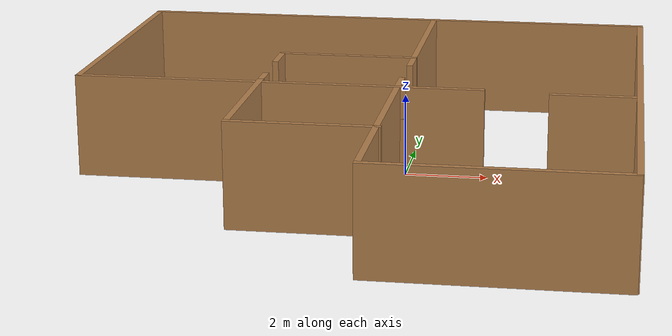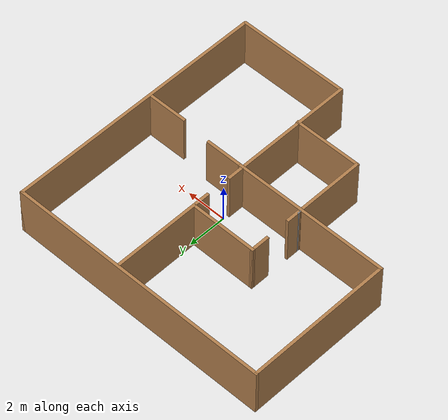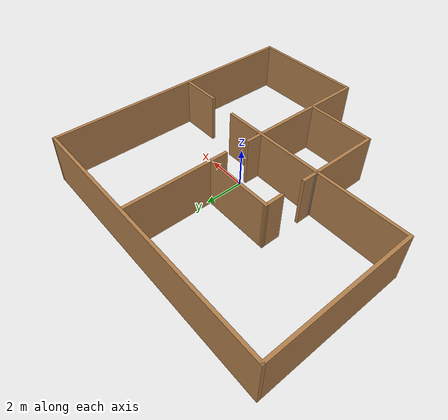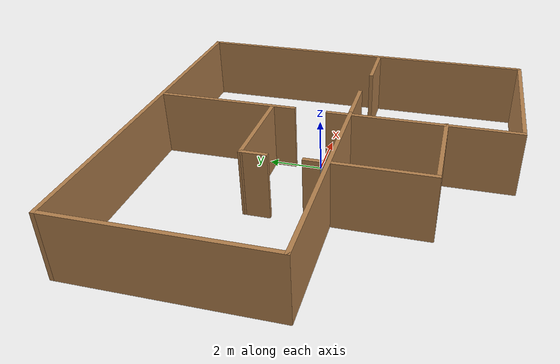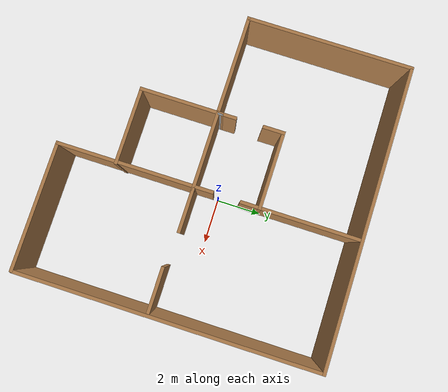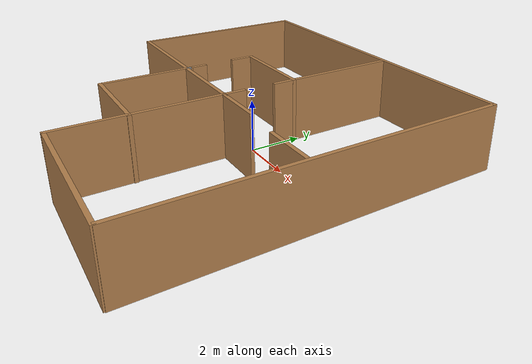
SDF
<?xml version='1.0'?>
<sdf version='1.6'>
  <model name='Robot_House'>
    <pose frame=''>-1.104 -0.45 0 0 -0 0</pose>
    <link name='Wall_0'>
      <collision name='Wall_0_Collision'>
        <geometry>
          <box>
            <size>13.5 0.15 2.5</size>
          </box>
        </geometry>
        <pose frame=''>0 0 1.25 0 -0 0</pose>
      </collision>
      <visual name='Wall_0_Visual'>
        <pose frame=''>0 0 1.25 0 -0 0</pose>
        <geometry>
          <box>
            <size>13.5 0.15 2.5</size>
          </box>
        </geometry>
        <material>
          <script>
            <uri>file://media/materials/scripts/gazebo.material</uri>
            <name>Gazebo/Wood</name>
          </script>
          <ambient>1 1 1 1</ambient>
        </material>
        <meta>
          <layer>0</layer>
        </meta>
      </visual>
      <pose frame=''>-0 6.703 0 0 -0 0</pose>
    </link>
    <link name='Wall_1'>
      <collision name='Wall_1_Collision'>
        <geometry>
          <box>
            <size>13.5 0.15 2.5</size>
          </box>
        </geometry>
        <pose frame=''>0 0 1.25 0 -0 0</pose>
      </collision>
      <visual name='Wall_1_Visual'>
        <pose frame=''>0 0 1.25 0 -0 0</pose>
        <geometry>
          <box>
            <size>13.5 0.15 2.5</size>
          </box>
        </geometry>
        <material>
          <script>
            <uri>file://media/materials/scripts/gazebo.material</uri>
            <name>Gazebo/Wood</name>
          </script>
          <ambient>1 1 1 1</ambient>
        </material>
        <meta>
          <layer>0</layer>
        </meta>
      </visual>
      <pose frame=''>6.675 0.028 0 0 -0 -1.5708</pose>
    </link>
    <link name='Wall_10'>
      <collision name='Wall_10_Collision'>
        <geometry>
          <box>
            <size>8 0.15 2.5</size>
          </box>
        </geometry>
        <pose frame=''>0 0 1.25 0 -0 0</pose>
      </collision>
      <visual name='Wall_10_Visual'>
        <pose frame=''>0 0 1.25 0 -0 0</pose>
        <geometry>
          <box>
            <size>8 0.15 2.5</size>
          </box>
        </geometry>
        <material>
          <script>
            <uri>file://media/materials/scripts/gazebo.material</uri>
            <name>Gazebo/Wood</name>
          </script>
          <ambient>1 1 1 1</ambient>
        </material>
        <meta>
          <layer>0</layer>
        </meta>
      </visual>
      <pose frame=''>-2.75 -0.647 0 0 -0 0</pose>
    </link>
    <link name='Wall_12'>
      <collision name='Wall_12_Collision'>
        <geometry>
          <box>
            <size>0.75 0.15 2.5</size>
          </box>
        </geometry>
        <pose frame=''>0 0 1.25 0 -0 0</pose>
      </collision>
      <visual name='Wall_12_Visual'>
        <pose frame=''>0 0 1.25 0 -0 0</pose>
        <geometry>
          <box>
            <size>0.75 0.15 2.5</size>
          </box>
        </geometry>
        <material>
          <script>
            <uri>file://media/materials/scripts/gazebo.material</uri>
            <name>Gazebo/Wood</name>
          </script>
          <ambient>1 1 1 1</ambient>
        </material>
        <meta>
          <layer>0</layer>
        </meta>
      </visual>
      <pose frame=''>-2.263 -0.178 0 0 -0 -1.5708</pose>
    </link>
    <link name='Wall_14'>
      <collision name='Wall_14_Collision'>
        <geometry>
          <box>
            <size>0.25 0.15 2.5</size>
          </box>
        </geometry>
        <pose frame=''>0 0 1.25 0 -0 0</pose>
      </collision>
      <visual name='Wall_14_Visual'>
        <pose frame=''>0 0 1.25 0 -0 0</pose>
        <geometry>
          <box>
            <size>0.25 0.15 2.5</size>
          </box>
        </geometry>
        <material>
          <script>
            <uri>file://media/materials/scripts/gazebo.material</uri>
            <name>Gazebo/Grey</name>
          </script>
          <ambient>1 1 1 1</ambient>
        </material>
        <meta>
          <layer>0</layer>
        </meta>
      </visual>
      <pose frame=''>-2.26284 -0.528073 0 0 -0 -1.56764</pose>
    </link>
    <link name='Wall_16'>
      <collision name='Wall_16_Collision'>
        <geometry>
          <box>
            <size>1 0.15 2.5</size>
          </box>
        </geometry>
        <pose frame=''>0 0 1.25 0 -0 0</pose>
      </collision>
      <visual name='Wall_16_Visual'>
        <pose frame=''>0 0 1.25 0 -0 0</pose>
        <geometry>
          <box>
            <size>1 0.15 2.5</size>
          </box>
        </geometry>
        <material>
          <script>
            <uri>file://media/materials/scripts/gazebo.material</uri>
            <name>Gazebo/Wood</name>
          </script>
          <ambient>1 1 1 1</ambient>
        </material>
        <meta>
          <layer>0</layer>
        </meta>
      </visual>
      <pose frame=''>-2.274 1.848 0 0 -0 1.5708</pose>
    </link>
    <link name='Wall_17'>
      <collision name='Wall_17_Collision'>
        <geometry>
          <box>
            <size>3.5 0.15 2.5</size>
          </box>
        </geometry>
        <pose frame=''>0 0 1.25 0 -0 0</pose>
      </collision>
      <visual name='Wall_17_Visual'>
        <pose frame=''>0 0 1.25 0 -0 0</pose>
        <geometry>
          <box>
            <size>3.5 0.15 2.5</size>
          </box>
        </geometry>
        <material>
          <script>
            <uri>file://media/materials/scripts/gazebo.material</uri>
            <name>Gazebo/Wood</name>
          </script>
          <ambient>1 1 1 1</ambient>
        </material>
        <meta>
          <layer>0</layer>
        </meta>
      </visual>
      <pose frame=''>-0.599 2.2665 0 0 -0 -0.003881</pose>
    </link>
    <link name='Wall_19'>
      <collision name='Wall_19_Collision'>
        <geometry>
          <box>
            <size>7 0.15 2.5</size>
          </box>
        </geometry>
        <pose frame=''>0 0 1.25 0 -0 0</pose>
      </collision>
      <visual name='Wall_19_Visual'>
        <pose frame=''>0 0 1.25 0 -0 0</pose>
        <geometry>
          <box>
            <size>7 0.15 2.5</size>
          </box>
        </geometry>
        <material>
          <script>
            <uri>file://media/materials/scripts/gazebo.material</uri>
            <name>Gazebo/Wood</name>
          </script>
          <ambient>1 1 1 1</ambient>
        </material>
        <meta>
          <layer>0</layer>
        </meta>
      </visual>
      <pose frame=''>1.049 -3.278 0 0 -0 -1.5708</pose>
    </link>
    <link name='Wall_22'>
      <collision name='Wall_22_Collision'>
        <geometry>
          <box>
            <size>5.75 0.15 2.5</size>
          </box>
        </geometry>
        <pose frame=''>0 0 1.25 0 -0 0</pose>
      </collision>
      <visual name='Wall_22_Visual'>
        <pose frame=''>0 0 1.25 0 -0 0</pose>
        <geometry>
          <box>
            <size>5.75 0.15 2.5</size>
          </box>
        </geometry>
        <material>
          <script>
            <uri>file://media/materials/scripts/gazebo.material</uri>
            <name>Gazebo/Wood</name>
          </script>
          <ambient>1 1 1 1</ambient>
        </material>
        <meta>
          <layer>0</layer>
        </meta>
      </visual>
      <pose frame=''>3.849 -6.703 0 0 -0 0</pose>
    </link>
    <link name='Wall_24'>
      <collision name='Wall_24_Collision'>
        <geometry>
          <box>
            <size>2 0.15 2.5</size>
          </box>
        </geometry>
        <pose frame=''>0 0 1.25 0 -0 0</pose>
      </collision>
      <visual name='Wall_24_Visual'>
        <pose frame=''>0 0 1.25 0 -0 0</pose>
        <geometry>
          <box>
            <size>2 0.15 2.5</size>
          </box>
        </geometry>
        <material>
          <script>
            <uri>file://media/materials/scripts/gazebo.material</uri>
            <name>Gazebo/Wood</name>
          </script>
          <ambient>1 1 1 1</ambient>
        </material>
        <meta>
          <layer>0</layer>
        </meta>
      </visual>
      <pose frame=''>2.1 -0.647 0 0 -0 0</pose>
    </link>
    <link name='Wall_26'>
      <collision name='Wall_26_Collision'>
        <geometry>
          <box>
            <size>5.25 0.15 2.5</size>
          </box>
        </geometry>
        <pose frame=''>0 0 1.25 0 -0 0</pose>
      </collision>
      <visual name='Wall_26_Visual'>
        <pose frame=''>0 0 1.25 0 -0 0</pose>
        <geometry>
          <box>
            <size>5.25 0.15 2.5</size>
          </box>
        </geometry>
        <material>
          <script>
            <uri>file://media/materials/scripts/gazebo.material</uri>
            <name>Gazebo/Wood</name>
          </script>
          <ambient>1 1 1 1</ambient>
        </material>
        <meta>
          <layer>0</layer>
        </meta>
      </visual>
      <pose frame=''>1.075 4.016 0 0 -0 1.5708</pose>
    </link>
    <link name='Wall_28'>
      <collision name='Wall_28_Collision'>
        <geometry>
          <box>
            <size>3.75 0.15 2.5</size>
          </box>
        </geometry>
        <pose frame=''>0 0 1.25 0 -0 0</pose>
      </collision>
      <visual name='Wall_28_Visual'>
        <pose frame=''>0 0 1.25 0 -0 0</pose>
        <geometry>
          <box>
            <size>3.75 0.15 2.5</size>
          </box>
        </geometry>
        <material>
          <script>
            <uri>file://media/materials/scripts/gazebo.material</uri>
            <name>Gazebo/Wood</name>
          </script>
          <ambient>1 1 1 1</ambient>
        </material>
        <meta>
          <layer>0</layer>
        </meta>
      </visual>
      <pose frame=''>-2.263 -2.278 0 0 -0 -1.5708</pose>
    </link>
    <link name='Wall_29'>
      <collision name='Wall_29_Collision'>
        <geometry>
          <box>
            <size>3.5 0.15 2.5</size>
          </box>
        </geometry>
        <pose frame=''>0 0 1.25 0 -0 0</pose>
      </collision>
      <visual name='Wall_29_Visual'>
        <pose frame=''>0 0 1.25 0 -0 0</pose>
        <geometry>
          <box>
            <size>3.5 0.15 2.5</size>
          </box>
        </geometry>
        <material>
          <script>
            <uri>file://media/materials/scripts/gazebo.material</uri>
            <name>Gazebo/Wood</name>
          </script>
          <ambient>1 1 1 1</ambient>
        </material>
        <meta>
          <layer>0</layer>
        </meta>
      </visual>
      <pose frame=''>-0.588 -4.078 0 0 -0 0</pose>
    </link>
    <link name='Wall_7'>
      <collision name='Wall_7_Collision'>
        <geometry>
          <box>
            <size>2 0.15 2.5</size>
          </box>
        </geometry>
        <pose frame=''>0 0 1.25 0 -0 0</pose>
      </collision>
      <visual name='Wall_7_Visual'>
        <pose frame=''>0 0 1.25 0 -0 0</pose>
        <geometry>
          <box>
            <size>2 0.15 2.5</size>
          </box>
        </geometry>
        <material>
          <script>
            <uri>file://media/materials/scripts/gazebo.material</uri>
            <name>Gazebo/Wood</name>
          </script>
          <ambient>1 1 1 1</ambient>
        </material>
        <meta>
          <layer>0</layer>
        </meta>
      </visual>
      <pose frame=''>5.597 -0.811 0 0 -0 0</pose>
    </link>
    <link name='Wall_9'>
      <collision name='Wall_9_Collision'>
        <geometry>
          <box>
            <size>7.49971 0.15 2.5</size>
          </box>
        </geometry>
        <pose frame=''>0 0 1.25 0 -0 0</pose>
      </collision>
      <visual name='Wall_9_Visual'>
        <pose frame=''>0 0 1.25 0 -0 0</pose>
        <geometry>
          <box>
            <size>7.49971 0.15 2.5</size>
          </box>
        </geometry>
        <material>
          <script>
            <uri>file://media/materials/scripts/gazebo.material</uri>
            <name>Gazebo/Wood</name>
          </script>
          <ambient>1 1 1 1</ambient>
        </material>
        <meta>
          <layer>0</layer>
        </meta>
      </visual>
      <pose frame=''>-6.675 3.028 0 0 -0 -1.5708</pose>
    </link>
    <static>1</static>
  </model>
</sdf>
